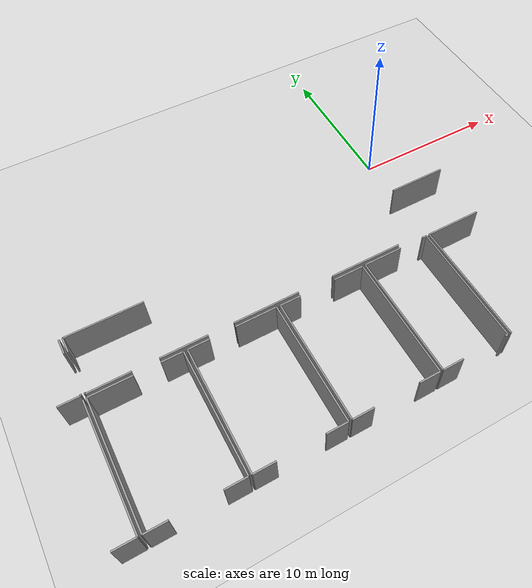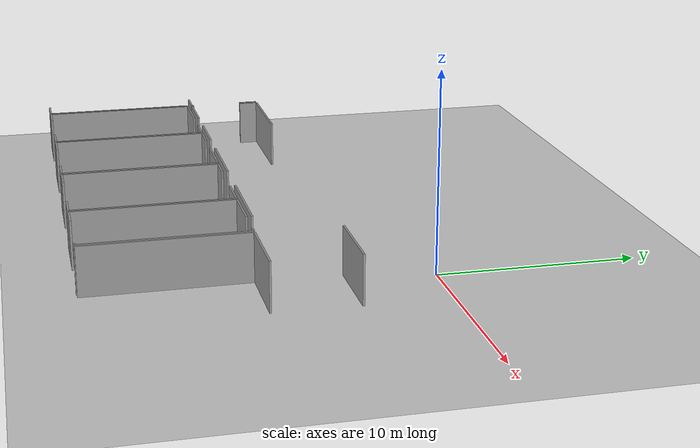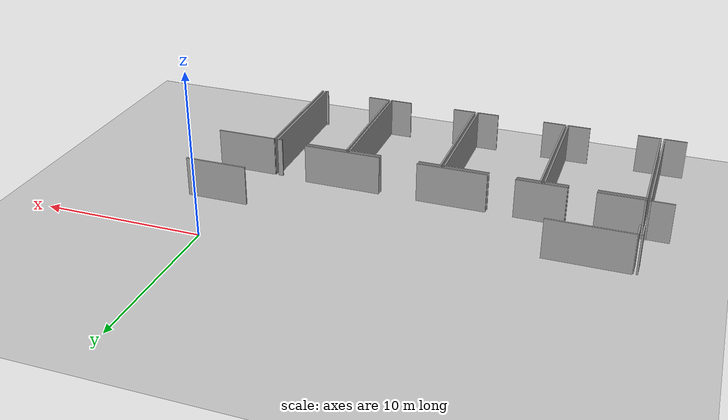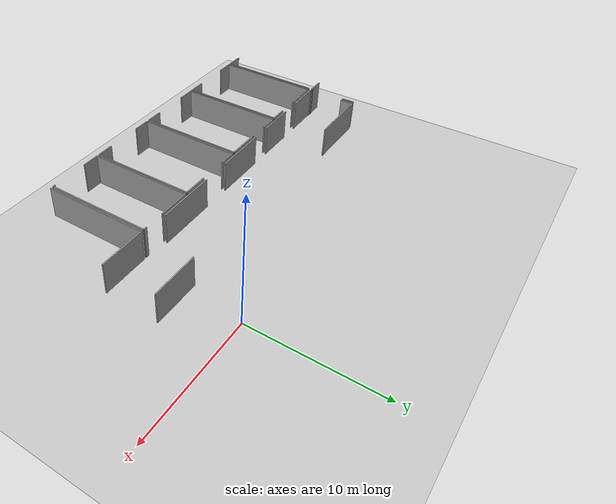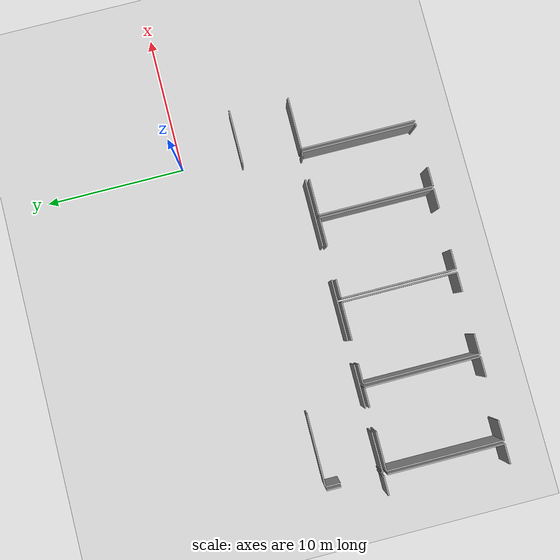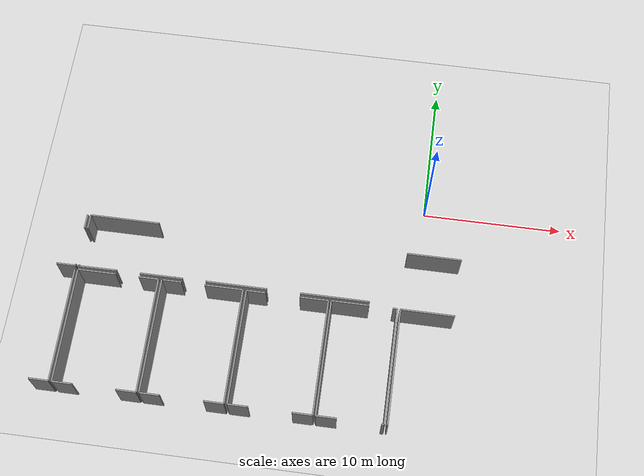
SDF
<sdf version="1.6">
 <world name="default">
  <model name="ground_plane">
   <static>1</static>
   <link name="link">
    <collision name="collision">
     <geometry><plane><normal>0 0 1</normal><size>100 100</size></plane></geometry>
     <surface><friction><ode><mu>100</mu><mu2>50</mu2></ode></friction></surface>
    </collision>
    <visual name="visual">
     <cast_shadows>0</cast_shadows>
     <geometry><plane><normal>0 0 1</normal><size>100 100</size></plane></geometry>
     <material>
      <script><uri>file://media/materials/scripts/gazebo.material</uri><name>Gazebo/Grey</name></script>
     </material>
    </visual>
   </link>
  </model>
  <model name="50041184">
   <static>1</static>
   <link name="Wall_308">
    <collision name="Wall_308_Collision">
     <geometry><box><size>1.01560863521 0.1 2.5</size></box></geometry>
     <pose>0.507804317606 0 1.25 0 0 0</pose>
    </collision>
    <visual name="Wall_308_Visual">
     <pose>0.507804317606 0 1.25 0 0 0</pose>
     <geometry><box><size>1.01560863521 0.1 2.5</size></box></geometry>
     <material>
      <script><uri>file://media/materials/scripts/gazebo.material</uri><name>Gazebo/Grey</name></script>
      <ambient>1 1 1 1</ambient>
     </material>
    </visual>
    <pose>47.5047257539 -21.1038396354 0 0 0 -1.57079632679</pose>
   </link>
   <link name="Wall_309">
    <collision name="Wall_309_Collision">
     <geometry><box><size>0.108543172888 0.1 2.5</size></box></geometry>
     <pose>0.0542715864442 0 1.25 0 0 0</pose>
    </collision>
    <visual name="Wall_309_Visual">
     <pose>0.0542715864442 0 1.25 0 0 0</pose>
     <geometry><box><size>0.108543172888 0.1 2.5</size></box></geometry>
     <material>
      <script><uri>file://media/materials/scripts/gazebo.material</uri><name>Gazebo/Grey</name></script>
      <ambient>1 1 1 1</ambient>
     </material>
    </visual>
    <pose>47.5047257539 -24.9661992751 0 0 0 -1.57079632679</pose>
   </link>
   <link name="Wall_310">
    <collision name="Wall_310_Collision">
     <geometry><box><size>1.36586666328 0.1 2.5</size></box></geometry>
     <pose>0.682933331641 0 1.25 0 0 0</pose>
    </collision>
    <visual name="Wall_310_Visual">
     <pose>0.682933331641 0 1.25 0 0 0</pose>
     <geometry><box><size>1.36586666328 0.1 2.5</size></box></geometry>
     <material>
      <script><uri>file://media/materials/scripts/gazebo.material</uri><name>Gazebo/Grey</name></script>
      <ambient>1 1 1 1</ambient>
     </material>
    </visual>
    <pose>47.5047257539 -25.074742448 0 0 0 3.14159265359</pose>
   </link>
   <link name="Wall_358">
    <collision name="Wall_358_Collision">
     <geometry><box><size>1.39011431945 0.1 2.5</size></box></geometry>
     <pose>0.695057159724 0 1.25 0 0 0</pose>
    </collision>
    <visual name="Wall_358_Visual">
     <pose>0.695057159724 0 1.25 0 0 0</pose>
     <geometry><box><size>1.39011431945 0.1 2.5</size></box></geometry>
     <material>
      <script><uri>file://media/materials/scripts/gazebo.material</uri><name>Gazebo/Grey</name></script>
      <ambient>1 1 1 1</ambient>
     </material>
    </visual>
    <pose>47.5148818403 -33.5642150297 0 0 0 3.14159265359</pose>
   </link>
   <link name="Wall_363">
    <collision name="Wall_363_Collision">
     <geometry><box><size>8.21094201167 0.1 2.5</size></box></geometry>
     <pose>4.10547100584 0 1.25 0 0 0</pose>
    </collision>
    <visual name="Wall_363_Visual">
     <pose>4.10547100584 0 1.25 0 0 0</pose>
     <geometry><box><size>8.21094201167 0.1 2.5</size></box></geometry>
     <material>
      <script><uri>file://media/materials/scripts/gazebo.material</uri><name>Gazebo/Grey</name></script>
      <ambient>1 1 1 1</ambient>
     </material>
    </visual>
    <pose>47.5161513511 -25.3532731162 0 0 0 -1.57095093887</pose>
   </link>
   <link name="Wall_364">
    <collision name="Wall_364_Collision">
     <geometry><box><size>0.108416221809 0.1 2.5</size></box></geometry>
     <pose>0.0542081109045 0 1.25 0 0 0</pose>
    </collision>
    <visual name="Wall_364_Visual">
     <pose>0.0542081109045 0 1.25 0 0 0</pose>
     <geometry><box><size>0.108416221809 0.1 2.5</size></box></geometry>
     <material>
      <script><uri>file://media/materials/scripts/gazebo.material</uri><name>Gazebo/Grey</name></script>
      <ambient>1 1 1 1</ambient>
     </material>
    </visual>
    <pose>47.741489517 -25.0829942682 0 0 0 1.57079632679</pose>
   </link>
   <link name="Wall_365">
    <collision name="Wall_365_Collision">
     <geometry><box><size>1.04874286694 0.1 2.5</size></box></geometry>
     <pose>0.524371433468 0 1.25 0 0 0</pose>
    </collision>
    <visual name="Wall_365_Visual">
     <pose>0.524371433468 0 1.25 0 0 0</pose>
     <geometry><box><size>1.04874286694 0.1 2.5</size></box></geometry>
     <material>
      <script><uri>file://media/materials/scripts/gazebo.material</uri><name>Gazebo/Grey</name></script>
      <ambient>1 1 1 1</ambient>
     </material>
    </visual>
    <pose>47.741489517 -22.1415377584 0 0 0 1.57079632679</pose>
   </link>
   <link name="Wall_366">
    <collision name="Wall_366_Collision">
     <geometry><box><size>4.99857180036 0.1 2.5</size></box></geometry>
     <pose>2.49928590018 0 1.25 0 0 0</pose>
    </collision>
    <visual name="Wall_366_Visual">
     <pose>2.49928590018 0 1.25 0 0 0</pose>
     <geometry><box><size>4.99857180036 0.1 2.5</size></box></geometry>
     <material>
      <script><uri>file://media/materials/scripts/gazebo.material</uri><name>Gazebo/Grey</name></script>
      <ambient>1 1 1 1</ambient>
     </material>
    </visual>
    <pose>47.741489517 -21.0927948915 0 0 0 0.0</pose>
   </link>
   <link name="Wall_367">
    <collision name="Wall_367_Collision">
     <geometry><box><size>3.87073841095 0.1 2.5</size></box></geometry>
     <pose>1.93536920548 0 1.25 0 0 0</pose>
    </collision>
    <visual name="Wall_367_Visual">
     <pose>1.93536920548 0 1.25 0 0 0</pose>
     <geometry><box><size>3.87073841095 0.1 2.5</size></box></geometry>
     <material>
      <script><uri>file://media/materials/scripts/gazebo.material</uri><name>Gazebo/Grey</name></script>
      <ambient>1 1 1 1</ambient>
     </material>
    </visual>
    <pose>70.5878596683 -21.0927948915 0 0 0 0.0</pose>
   </link>
   <link name="Wall_388">
    <collision name="Wall_388_Collision">
     <geometry><box><size>4.85587878711 0.1 2.5</size></box></geometry>
     <pose>2.42793939355 0 1.25 0 0 0</pose>
    </collision>
    <visual name="Wall_388_Visual">
     <pose>2.42793939355 0 1.25 0 0 0</pose>
     <geometry><box><size>4.85587878711 0.1 2.5</size></box></geometry>
     <material>
      <script><uri>file://media/materials/scripts/gazebo.material</uri><name>Gazebo/Grey</name></script>
      <ambient>1 1 1 1</ambient>
     </material>
    </visual>
    <pose>68.360249078 -25.0634438019 0 0 0 3.14159265359</pose>
   </link>
   <link name="Wall_389">
    <collision name="Wall_389_Collision">
     <geometry><box><size>4.32395376442 0.1 2.5</size></box></geometry>
     <pose>2.16197688221 0 1.25 0 0 0</pose>
    </collision>
    <visual name="Wall_389_Visual">
     <pose>2.16197688221 0 1.25 0 0 0</pose>
     <geometry><box><size>4.32395376442 0.1 2.5</size></box></geometry>
     <material>
      <script><uri>file://media/materials/scripts/gazebo.material</uri><name>Gazebo/Grey</name></script>
      <ambient>1 1 1 1</ambient>
     </material>
    </visual>
    <pose>61.1305120572 -25.0634438019 0 0 0 3.14159265359</pose>
   </link>
   <link name="Wall_390">
    <collision name="Wall_390_Collision">
     <geometry><box><size>3.0341307977 0.1 2.5</size></box></geometry>
     <pose>1.51706539885 0 1.25 0 0 0</pose>
    </collision>
    <visual name="Wall_390_Visual">
     <pose>1.51706539885 0 1.25 0 0 0</pose>
     <geometry><box><size>3.0341307977 0.1 2.5</size></box></geometry>
     <material>
      <script><uri>file://media/materials/scripts/gazebo.material</uri><name>Gazebo/Grey</name></script>
      <ambient>1 1 1 1</ambient>
     </material>
    </visual>
    <pose>55.1544169454 -25.0634438019 0 0 0 3.14159265359</pose>
   </link>
   <link name="Wall_391">
    <collision name="Wall_391_Collision">
     <geometry><box><size>2.72190135536 0.1 2.5</size></box></geometry>
     <pose>1.36095067768 0 1.25 0 0 0</pose>
    </collision>
    <visual name="Wall_391_Visual">
     <pose>1.36095067768 0 1.25 0 0 0</pose>
     <geometry><box><size>2.72190135536 0.1 2.5</size></box></geometry>
     <material>
      <script><uri>file://media/materials/scripts/gazebo.material</uri><name>Gazebo/Grey</name></script>
      <ambient>1 1 1 1</ambient>
     </material>
    </visual>
    <pose>50.4633206594 -25.0634438019 0 0 0 -3.13440994129</pose>
   </link>
   <link name="Wall_392">
    <collision name="Wall_392_Collision">
     <geometry><box><size>1.41360026914 0.1 2.5</size></box></geometry>
     <pose>0.706800134568 0 1.25 0 0 0</pose>
    </collision>
    <visual name="Wall_392_Visual">
     <pose>0.706800134568 0 1.25 0 0 0</pose>
     <geometry><box><size>1.41360026914 0.1 2.5</size></box></geometry>
     <material>
      <script><uri>file://media/materials/scripts/gazebo.material</uri><name>Gazebo/Grey</name></script>
      <ambient>1 1 1 1</ambient>
     </material>
    </visual>
    <pose>53.5427729924 -33.5722129477 0 0 0 3.14159265359</pose>
   </link>
   <link name="Wall_393">
    <collision name="Wall_393_Collision">
     <geometry><box><size>1.39950869932 0.1 2.5</size></box></geometry>
     <pose>0.699754349661 0 1.25 0 0 0</pose>
    </collision>
    <visual name="Wall_393_Visual">
     <pose>0.699754349661 0 1.25 0 0 0</pose>
     <geometry><box><size>1.39950869932 0.1 2.5</size></box></geometry>
     <material>
      <script><uri>file://media/materials/scripts/gazebo.material</uri><name>Gazebo/Grey</name></script>
      <ambient>1 1 1 1</ambient>
     </material>
    </visual>
    <pose>49.132492494 -33.5722129477 0 0 0 3.14159265359</pose>
   </link>
   <link name="Wall_394">
    <collision name="Wall_394_Collision">
     <geometry><box><size>8.23709383589 0.1 2.5</size></box></geometry>
     <pose>4.11854691795 0 1.25 0 0 0</pose>
    </collision>
    <visual name="Wall_394_Visual">
     <pose>4.11854691795 0 1.25 0 0 0</pose>
     <geometry><box><size>8.23709383589 0.1 2.5</size></box></geometry>
     <material>
      <script><uri>file://media/materials/scripts/gazebo.material</uri><name>Gazebo/Grey</name></script>
      <ambient>1 1 1 1</ambient>
     </material>
    </visual>
    <pose>47.7329837947 -33.5722129477 0 0 0 1.57079632679</pose>
   </link>
   <link name="Wall_395">
    <collision name="Wall_395_Collision">
     <geometry><box><size>2.71586444164 0.1 2.5</size></box></geometry>
     <pose>1.35793222082 0 1.25 0 0 0</pose>
    </collision>
    <visual name="Wall_395_Visual">
     <pose>1.35793222082 0 1.25 0 0 0</pose>
     <geometry><box><size>2.71586444164 0.1 2.5</size></box></geometry>
     <material>
      <script><uri>file://media/materials/scripts/gazebo.material</uri><name>Gazebo/Grey</name></script>
      <ambient>1 1 1 1</ambient>
     </material>
    </visual>
    <pose>47.7329837947 -25.3351191119 0 0 0 0.0</pose>
   </link>
   <link name="Wall_396">
    <collision name="Wall_396_Collision">
     <geometry><box><size>1.39189163456 0.1 2.5</size></box></geometry>
     <pose>0.695945817279 0 1.25 0 0 0</pose>
    </collision>
    <visual name="Wall_396_Visual">
     <pose>0.695945817279 0 1.25 0 0 0</pose>
     <geometry><box><size>1.39189163456 0.1 2.5</size></box></geometry>
     <material>
      <script><uri>file://media/materials/scripts/gazebo.material</uri><name>Gazebo/Grey</name></script>
      <ambient>1 1 1 1</ambient>
     </material>
    </visual>
    <pose>52.0937533721 -25.3351191119 0 0 0 0.0</pose>
   </link>
   <link name="Wall_397">
    <collision name="Wall_397_Collision">
     <geometry><box><size>8.23729193777 0.1 2.5</size></box></geometry>
     <pose>4.11864596888 0 1.25 0 0 0</pose>
    </collision>
    <visual name="Wall_397_Visual">
     <pose>4.11864596888 0 1.25 0 0 0</pose>
     <geometry><box><size>8.23729193777 0.1 2.5</size></box></geometry>
     <material>
      <script><uri>file://media/materials/scripts/gazebo.material</uri><name>Gazebo/Grey</name></script>
      <ambient>1 1 1 1</ambient>
     </material>
    </visual>
    <pose>53.4856450067 -25.3351191119 0 0 0 -1.56386098395</pose>
   </link>
   <link name="Wall_398">
    <collision name="Wall_398_Collision">
     <geometry><box><size>1.38605188491 0.1 2.5</size></box></geometry>
     <pose>0.693025942453 0 1.25 0 0 0</pose>
    </collision>
    <visual name="Wall_398_Visual">
     <pose>0.693025942453 0 1.25 0 0 0</pose>
     <geometry><box><size>1.38605188491 0.1 2.5</size></box></geometry>
     <material>
      <script><uri>file://media/materials/scripts/gazebo.material</uri><name>Gazebo/Grey</name></script>
      <ambient>1 1 1 1</ambient>
     </material>
    </visual>
    <pose>59.5140439632 -33.5738633118 0 0 0 3.14159265359</pose>
   </link>
   <link name="Wall_399">
    <collision name="Wall_399_Collision">
     <geometry><box><size>1.41055344323 0.1 2.5</size></box></geometry>
     <pose>0.705276721615 0 1.25 0 0 0</pose>
    </collision>
    <visual name="Wall_399_Visual">
     <pose>0.705276721615 0 1.25 0 0 0</pose>
     <geometry><box><size>1.41055344323 0.1 2.5</size></box></geometry>
     <material>
      <script><uri>file://media/materials/scripts/gazebo.material</uri><name>Gazebo/Grey</name></script>
      <ambient>1 1 1 1</ambient>
     </material>
    </visual>
    <pose>55.1423565929 -33.5738633118 0 0 0 3.14159265359</pose>
   </link>
   <link name="Wall_400">
    <collision name="Wall_400_Collision">
     <geometry><box><size>8.24039456395 0.1 2.5</size></box></geometry>
     <pose>4.12019728198 0 1.25 0 0 0</pose>
    </collision>
    <visual name="Wall_400_Visual">
     <pose>4.12019728198 0 1.25 0 0 0</pose>
     <geometry><box><size>8.24039456395 0.1 2.5</size></box></geometry>
     <material>
      <script><uri>file://media/materials/scripts/gazebo.material</uri><name>Gazebo/Grey</name></script>
      <ambient>1 1 1 1</ambient>
     </material>
    </visual>
    <pose>53.7318031497 -33.5738633118 0 0 0 1.57079632679</pose>
   </link>
   <link name="Wall_401">
    <collision name="Wall_401_Collision">
     <geometry><box><size>1.38859090649 0.1 2.5</size></box></geometry>
     <pose>0.694295453247 0 1.25 0 0 0</pose>
    </collision>
    <visual name="Wall_401_Visual">
     <pose>0.694295453247 0 1.25 0 0 0</pose>
     <geometry><box><size>1.38859090649 0.1 2.5</size></box></geometry>
     <material>
      <script><uri>file://media/materials/scripts/gazebo.material</uri><name>Gazebo/Grey</name></script>
      <ambient>1 1 1 1</ambient>
     </material>
    </visual>
    <pose>53.7318031497 -25.3334687478 0 0 0 0.0</pose>
   </link>
   <link name="Wall_402">
    <collision name="Wall_402_Collision">
     <geometry><box><size>2.71726090351 0.1 2.5</size></box></geometry>
     <pose>1.35863045176 0 1.25 0 0 0</pose>
    </collision>
    <visual name="Wall_402_Visual">
     <pose>1.35863045176 0 1.25 0 0 0</pose>
     <geometry><box><size>2.71726090351 0.1 2.5</size></box></geometry>
     <material>
      <script><uri>file://media/materials/scripts/gazebo.material</uri><name>Gazebo/Grey</name></script>
      <ambient>1 1 1 1</ambient>
     </material>
    </visual>
    <pose>56.7760900337 -25.3334687478 0 0 0 0.0</pose>
   </link>
   <link name="Wall_403">
    <collision name="Wall_403_Collision">
     <geometry><box><size>8.24042054576 0.1 2.5</size></box></geometry>
     <pose>4.12021027288 0 1.25 0 0 0</pose>
    </collision>
    <visual name="Wall_403_Visual">
     <pose>4.12021027288 0 1.25 0 0 0</pose>
     <geometry><box><size>8.24042054576 0.1 2.5</size></box></geometry>
     <material>
      <script><uri>file://media/materials/scripts/gazebo.material</uri><name>Gazebo/Grey</name></script>
      <ambient>1 1 1 1</ambient>
     </material>
    </visual>
    <pose>59.4933509372 -25.3334687478 0 0 0 -1.56828516276</pose>
   </link>
   <link name="Wall_404">
    <collision name="Wall_404_Collision">
     <geometry><box><size>1.39950869932 0.1 2.5</size></box></geometry>
     <pose>0.699754349661 0 1.25 0 0 0</pose>
    </collision>
    <visual name="Wall_404_Visual">
     <pose>0.699754349661 0 1.25 0 0 0</pose>
     <geometry><box><size>1.39950869932 0.1 2.5</size></box></geometry>
     <material>
      <script><uri>file://media/materials/scripts/gazebo.material</uri><name>Gazebo/Grey</name></script>
      <ambient>1 1 1 1</ambient>
     </material>
    </visual>
    <pose>65.5208612361 -33.5781796485 0 0 0 3.14159265359</pose>
   </link>
   <link name="Wall_405">
    <collision name="Wall_405_Collision">
     <geometry><box><size>1.41042649215 0.1 2.5</size></box></geometry>
     <pose>0.705213246076 0 1.25 0 0 0</pose>
    </collision>
    <visual name="Wall_405_Visual">
     <pose>0.705213246076 0 1.25 0 0 0</pose>
     <geometry><box><size>1.41042649215 0.1 2.5</size></box></geometry>
     <material>
      <script><uri>file://media/materials/scripts/gazebo.material</uri><name>Gazebo/Grey</name></script>
      <ambient>1 1 1 1</ambient>
     </material>
    </visual>
    <pose>61.1466348443 -33.5781796485 0 0 0 3.14159265359</pose>
   </link>
   <link name="Wall_406">
    <collision name="Wall_406_Collision">
     <geometry><box><size>8.23036542868 0.1 2.5</size></box></geometry>
     <pose>4.11518271434 0 1.25 0 0 0</pose>
    </collision>
    <visual name="Wall_406_Visual">
     <pose>4.11518271434 0 1.25 0 0 0</pose>
     <geometry><box><size>8.23036542868 0.1 2.5</size></box></geometry>
     <material>
      <script><uri>file://media/materials/scripts/gazebo.material</uri><name>Gazebo/Grey</name></script>
      <ambient>1 1 1 1</ambient>
     </material>
    </visual>
    <pose>59.7362083521 -33.5781796485 0 0 0 1.57079632679</pose>
   </link>
   <link name="Wall_407">
    <collision name="Wall_407_Collision">
     <geometry><box><size>1.37208726617 0.1 2.5</size></box></geometry>
     <pose>0.686043633086 0 1.25 0 0 0</pose>
    </collision>
    <visual name="Wall_407_Visual">
     <pose>0.686043633086 0 1.25 0 0 0</pose>
     <geometry><box><size>1.37208726617 0.1 2.5</size></box></geometry>
     <material>
      <script><uri>file://media/materials/scripts/gazebo.material</uri><name>Gazebo/Grey</name></script>
      <ambient>1 1 1 1</ambient>
     </material>
    </visual>
    <pose>59.7362083521 -25.3478142198 0 0 0 0.0</pose>
   </link>
   <link name="Wall_408">
    <collision name="Wall_408_Collision">
     <geometry><box><size>2.02550447185 0.1 2.5</size></box></geometry>
     <pose>1.01275223593 0 1.25 0 0 0</pose>
    </collision>
    <visual name="Wall_408_Visual">
     <pose>1.01275223593 0 1.25 0 0 0</pose>
     <geometry><box><size>2.02550447185 0.1 2.5</size></box></geometry>
     <material>
      <script><uri>file://media/materials/scripts/gazebo.material</uri><name>Gazebo/Grey</name></script>
      <ambient>1 1 1 1</ambient>
     </material>
    </visual>
    <pose>63.4881205527 -25.3478142198 0 0 0 0.0</pose>
   </link>
   <link name="Wall_409">
    <collision name="Wall_409_Collision">
     <geometry><box><size>8.23036860975 0.1 2.5</size></box></geometry>
     <pose>4.11518430488 0 1.25 0 0 0</pose>
    </collision>
    <visual name="Wall_409_Visual">
     <pose>4.11518430488 0 1.25 0 0 0</pose>
     <geometry><box><size>8.23036860975 0.1 2.5</size></box></geometry>
     <material>
      <script><uri>file://media/materials/scripts/gazebo.material</uri><name>Gazebo/Grey</name></script>
      <ambient>1 1 1 1</ambient>
     </material>
    </visual>
    <pose>65.5136250246 -25.3478142198 0 0 0 -1.569917118</pose>
   </link>
   <link name="Wall_410">
    <collision name="Wall_410_Collision">
     <geometry><box><size>0.191950032055 0.1 2.5</size></box></geometry>
     <pose>0.0959750160276 0 1.25 0 0 0</pose>
    </collision>
    <visual name="Wall_410_Visual">
     <pose>0.0959750160276 0 1.25 0 0 0</pose>
     <geometry><box><size>0.191950032055 0.1 2.5</size></box></geometry>
     <material>
      <script><uri>file://media/materials/scripts/gazebo.material</uri><name>Gazebo/Grey</name></script>
      <ambient>1 1 1 1</ambient>
     </material>
    </visual>
    <pose>70.3207545972 -33.580591719 0 0 0 3.14159265359</pose>
   </link>
   <link name="Wall_411">
    <collision name="Wall_411_Collision">
     <geometry><box><size>1.41068039431 0.1 2.5</size></box></geometry>
     <pose>0.705340197155 0 1.25 0 0 0</pose>
    </collision>
    <visual name="Wall_411_Visual">
     <pose>0.705340197155 0 1.25 0 0 0</pose>
     <geometry><box><size>1.41068039431 0.1 2.5</size></box></geometry>
     <material>
      <script><uri>file://media/materials/scripts/gazebo.material</uri><name>Gazebo/Grey</name></script>
      <ambient>1 1 1 1</ambient>
     </material>
    </visual>
    <pose>67.1237455646 -33.580591719 0 0 0 3.14159265359</pose>
   </link>
   <link name="Wall_412">
    <collision name="Wall_412_Collision">
     <geometry><box><size>8.24712297116 0.1 2.5</size></box></geometry>
     <pose>4.12356148558 0 1.25 0 0 0</pose>
    </collision>
    <visual name="Wall_412_Visual">
     <pose>4.12356148558 0 1.25 0 0 0</pose>
     <geometry><box><size>8.24712297116 0.1 2.5</size></box></geometry>
     <material>
      <script><uri>file://media/materials/scripts/gazebo.material</uri><name>Gazebo/Grey</name></script>
      <ambient>1 1 1 1</ambient>
     </material>
    </visual>
    <pose>65.7130651703 -33.580591719 0 0 0 1.57079632679</pose>
   </link>
   <link name="Wall_413">
    <collision name="Wall_413_Collision">
     <geometry><box><size>2.62941075656 0.1 2.5</size></box></geometry>
     <pose>1.31470537828 0 1.25 0 0 0</pose>
    </collision>
    <visual name="Wall_413_Visual">
     <pose>1.31470537828 0 1.25 0 0 0</pose>
     <geometry><box><size>2.62941075656 0.1 2.5</size></box></geometry>
     <material>
      <script><uri>file://media/materials/scripts/gazebo.material</uri><name>Gazebo/Grey</name></script>
      <ambient>1 1 1 1</ambient>
     </material>
    </visual>
    <pose>65.7130651703 -25.3334687478 0 0 0 0.0</pose>
   </link>
   <link name="Wall_414">
    <collision name="Wall_414_Collision">
     <geometry><box><size>0.307221612152 0.1 2.5</size></box></geometry>
     <pose>0.153610806076 0 1.25 0 0 0</pose>
    </collision>
    <visual name="Wall_414_Visual">
     <pose>0.153610806076 0 1.25 0 0 0</pose>
     <geometry><box><size>0.307221612152 0.1 2.5</size></box></geometry>
     <material>
      <script><uri>file://media/materials/scripts/gazebo.material</uri><name>Gazebo/Grey</name></script>
      <ambient>1 1 1 1</ambient>
     </material>
    </visual>
    <pose>70.0156911534 -25.3334687478 0 0 0 0.0</pose>
   </link>
   <link name="Wall_415">
    <collision name="Wall_415_Collision">
     <geometry><box><size>8.24712325355 0.1 2.5</size></box></geometry>
     <pose>4.12356162677 0 1.25 0 0 0</pose>
    </collision>
    <visual name="Wall_415_Visual">
     <pose>4.12356162677 0 1.25 0 0 0</pose>
     <geometry><box><size>8.24712325355 0.1 2.5</size></box></geometry>
     <material>
      <script><uri>file://media/materials/scripts/gazebo.material</uri><name>Gazebo/Grey</name></script>
      <ambient>1 1 1 1</ambient>
     </material>
    </visual>
    <pose>70.3229127656 -25.3334687478 0 0 0 -1.57105801421</pose>
   </link>
   <link name="Wall_418">
    <collision name="Wall_418_Collision">
     <geometry><box><size>8.25956417694 0.1 2.5</size></box></geometry>
     <pose>4.12978208847 0 1.25 0 0 0</pose>
    </collision>
    <visual name="Wall_418_Visual">
     <pose>4.12978208847 0 1.25 0 0 0</pose>
     <geometry><box><size>8.25956417694 0.1 2.5</size></box></geometry>
     <material>
      <script><uri>file://media/materials/scripts/gazebo.material</uri><name>Gazebo/Grey</name></script>
      <ambient>1 1 1 1</ambient>
     </material>
    </visual>
    <pose>70.5450771545 -33.5930329248 0 0 0 1.57079632679</pose>
   </link>
   <link name="Wall_419">
    <collision name="Wall_419_Collision">
     <geometry><box><size>3.78733155179 0.1 2.5</size></box></geometry>
     <pose>1.89366577589 0 1.25 0 0 0</pose>
    </collision>
    <visual name="Wall_419_Visual">
     <pose>1.89366577589 0 1.25 0 0 0</pose>
     <geometry><box><size>3.78733155179 0.1 2.5</size></box></geometry>
     <material>
      <script><uri>file://media/materials/scripts/gazebo.material</uri><name>Gazebo/Grey</name></script>
      <ambient>1 1 1 1</ambient>
     </material>
    </visual>
    <pose>70.5450771545 -25.3334687478 0 0 0 0.0</pose>
   </link>
   <pose>-71.6 16.80775925 0 0 0 0</pose>
  </model>
 </world>
</sdf>
